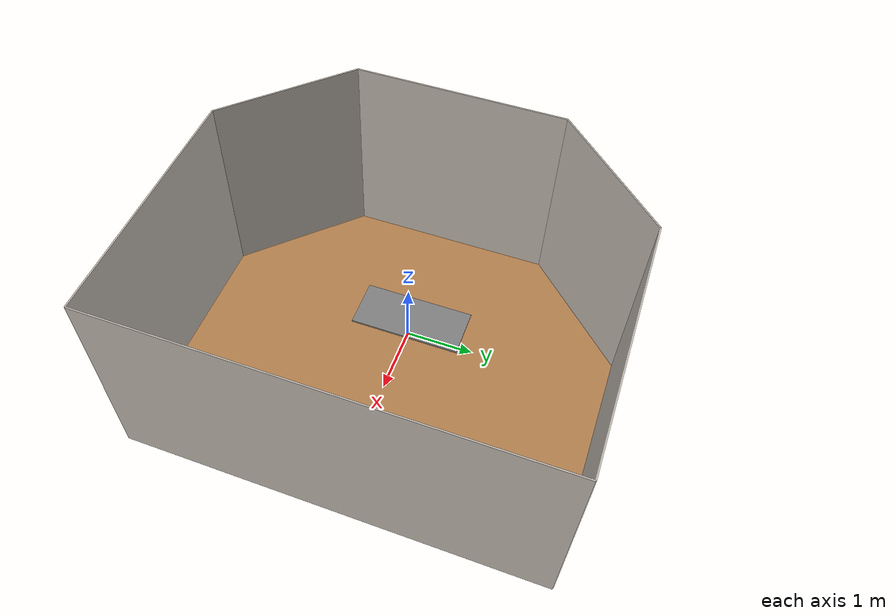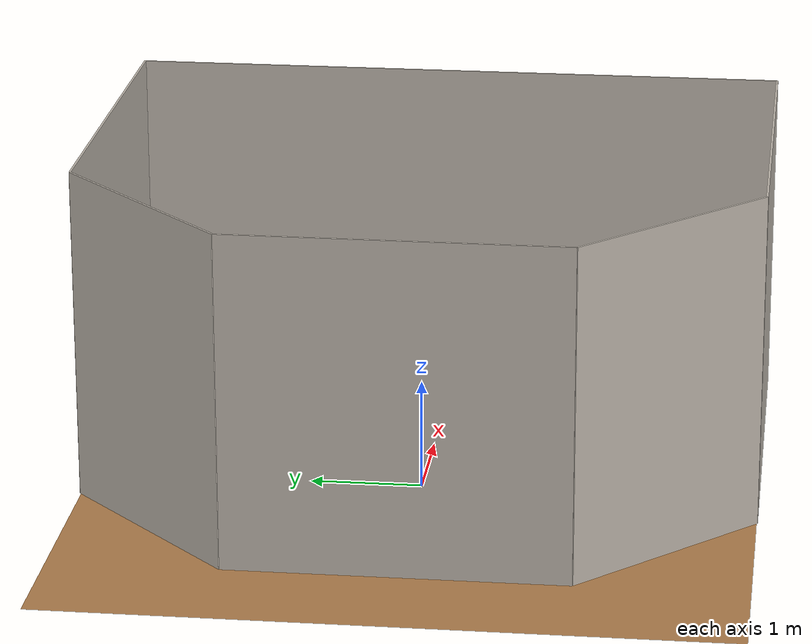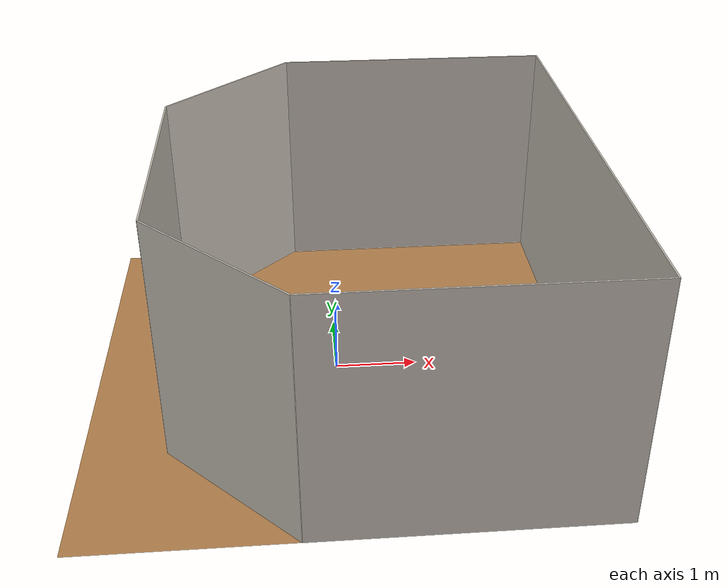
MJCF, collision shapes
<mujoco model="table_arena">
  <asset>
    <texture builtin="gradient" height="256" rgb1=".9 .9 1." rgb2=".2 .3 .4" type="skybox" width="256"/>
    <texture file="../textures/seamless_wood_planks_floor.png" type="2d" name="texplane"/>
    <material name="floorplane" reflectance="0.0" shininess="0.0"
	      specular="0.0" texrepeat="3 3" texture="texplane" texuniform="true"/>
    <!-- ceramic table texture and material-->
    <texture file="../textures/martin_novak_wood_table.png" type="cube" name="tex-table"/>
    <material name="table_texture" reflectance="0.0" shininess="0.0" specular="0.2" texrepeat="1 1" texture="tex-table" />
    <!-- steel legs -->
    <texture file="../textures/martin_novak_wood_table.png" type="cube" name="tex-table-legs"/>
    <material name="table_legs" reflectance="0.8" shininess="0.8" texrepeat="1 1" texture="tex-table-legs" />
    <!-- linen wall texture walls -->
    <texture file="../textures/linen_wall_texture.png" type="2d" name="tex-wall"/>

    <material name="walls_mat" reflectance="0.0" shininess="0.1" specular="0.8" texrepeat="3 3" texture="tex-wall" texuniform="true" />
    <!-- added table texture and material for domain randomization -->
    <texture  name="textable" builtin="flat" height="512" width="512" rgb1="0.5 0.5 0.5" rgb2="0.5 0.5 0.5"/>
    <material name="table_mat" texture="textable" />

    <texture file="coffee_table_seats/FabricLeatherBuffaloRustic001_COL_VAR1_4K.png" name="tex-coffee_table_seats" type="2d"/>
    <material name="coffee_table_seats" reflectance="0.5" texrepeat="1 1" texture="tex-coffee_table_seats" texuniform="false"/>
    <mesh file="coffee_table_seats/visual/coffee_table_seats_vis.msh" name="coffee_table_seats_vis" scale="1.0 1.0 1.0"/>

    <texture file="short_coffee_table/Marble062_COL_4K.png" name="tex-short_coffee_table" type="2d"/>
    <material name="short_coffee_table" reflectance="0.5" texrepeat="1 1" texture="tex-short_coffee_table" texuniform="false"/>
    <mesh file="short_coffee_table/visual/short_coffee_table_vis.msh" name="short_coffee_table_vis" scale="1.0 1.0 1.0"/>

    <texture file="wall_decoration/wall_decoration_texture.png" name="tex-wall_decoration" type="2d"/>
    <material name="wall_decoration" reflectance="0.5" texrepeat="1 1" texture="tex-wall_decoration" texuniform="false"/>
    <mesh file="wall_decoration/visual/wall_decoration_vis.msh" name="wall_decoration_vis" scale="0.4 0.1 0.4"/>

  </asset>
  <worldbody>
    <!-- Floor -->
    <body name="floor" pos="0 0 0">
      <geom condim="3" group="1" material="floorplane" name="floor" pos="0 0 0" size="3 3 .125" type="plane"/>
    </body>

    <geom pos="-1.0 0 1.5" quat="0.7071068 0 0 -0.7071068" type="mesh" mesh="wall_decoration_vis" conaffinity="0" contype="0" group="1" name="wall_decoration" material="wall_decoration"/>

    <body name="coffee_table" pos="0 0 0">
      <geom solimp="0.998 0.998 0.001" solref="0.001 1" density="100" friction="0.95 0.3 0.1" type="mesh" mesh="short_coffee_table_vis" conaffinity="0" contype="0" group="1" material="short_coffee_table"/>
      <geom pos="0.0 0.06 0.41" size="0.35 0.8 0.014" type="box" group="0" name="coffee_table_collision" friction="1 0.005 0.0001"/>
      <geom solimp="0.998 0.998 0.001" solref="0.001 1" density="100" friction="0.95 0.3 0.1" type="mesh" mesh="coffee_table_seats_vis" conaffinity="0" contype="0" group="1" material="coffee_table_seats"/>
    </body>

    <geom pos="-1.25 2.25 1.5" quat="0.6532815 0.6532815 0.2705981 0.2705981" size="1.06 1.5 0.01" type="box" conaffinity="0" contype="0" group="1" name="wall_leftcorner_visual" material="walls_mat"/>
    <geom pos="-1.25 -2.25 1.5" quat="0.6532815 0.6532815 -0.2705981 -0.2705981" size="1.06 1.5 0.01" type="box" conaffinity="0" contype="0" group="1" name="wall_rightcorner_visual" material="walls_mat"/>
    <geom pos="1.25 3 1.5" quat="0.7071 0.7071 0 0" size="1.75 1.5 0.01" type="box" conaffinity="0" contype="0" group="1" name="wall_left_visual" material="walls_mat"/>
    <geom pos="1.25 -3 1.5" quat="0.7071 -0.7071 0 0" size="1.75 1.5 0.01" type="box" conaffinity="0" contype="0" group="1" name="wall_right_visual" material="walls_mat"/>
    <geom pos="-2 0 1.5" quat="0.5 0.5 0.5 0.5" size="1.5 1.5 0.01" type="box" conaffinity="0" contype="0" group="1" name="wall_rear_visual" material="walls_mat"/>
    <geom pos="3 0 1.5" quat="0.5 0.5 -0.5 -0.5" size="3 1.5 0.01" type="box" conaffinity="0" contype="0" group="1" name="wall_front_visual" material="walls_mat"/>
    <!-- Table body -->
    <light name="light1" diffuse=".8 .8 .8" dir="0 -.15 -1" directional="false" pos="1 1 4.0" specular="0.3 0.3 0.3" castshadow="false"/>
    <light name="light2" diffuse=".8 .8 .8" dir="0 -.15 -1" directional="false" pos="-3. -3. 4.0" specular="0.3 0.3 0.3" castshadow="false"/>

    <!-- front view -->
    <camera mode="fixed" name="frontview" pos="1.0 0 1.45" quat="0.56 0.43 0.43 0.56"/>
    <!-- bird view -->
    <camera mode="fixed" name="birdview" pos="-0.2 0 3.0" quat="0.7071 0 0 0.7071"/>
    <!-- agent view -->
    <camera mode="fixed" name="agentview" pos="0.5 0 1.35" quat="0.653 0.271 0.271 0.653"/>

    <!-- side view -->
    <camera mode="fixed" name="sideview" pos="-0.05651774593317116 1.2761224129427358 1.4879572214102434" quat="0.009905065491771751 0.006877963156909582 0.5912228352893879 0.806418094001364" />

    <!-- Pre-reserved obstacle geom slots for runtime activation (multimodal_ambiguity.py) -->
    <body name="obstacle_slot_0" pos="0 0 0">
      <geom name="obstacle_0" type="box" size="0.001 0.001 0.001" rgba="0 0 0 0" contype="0" conaffinity="0"/>
    </body>
    <body name="obstacle_slot_1" pos="0 0 0">
      <geom name="obstacle_1" type="box" size="0.001 0.001 0.001" rgba="0 0 0 0" contype="0" conaffinity="0"/>
    </body>
    <body name="obstacle_slot_2" pos="0 0 0">
      <geom name="obstacle_2" type="box" size="0.001 0.001 0.001" rgba="0 0 0 0" contype="0" conaffinity="0"/>
    </body>
    <body name="obstacle_slot_3" pos="0 0 0">
      <geom name="obstacle_3" type="box" size="0.001 0.001 0.001" rgba="0 0 0 0" contype="0" conaffinity="0"/>
    </body>
  </worldbody>
</mujoco>
